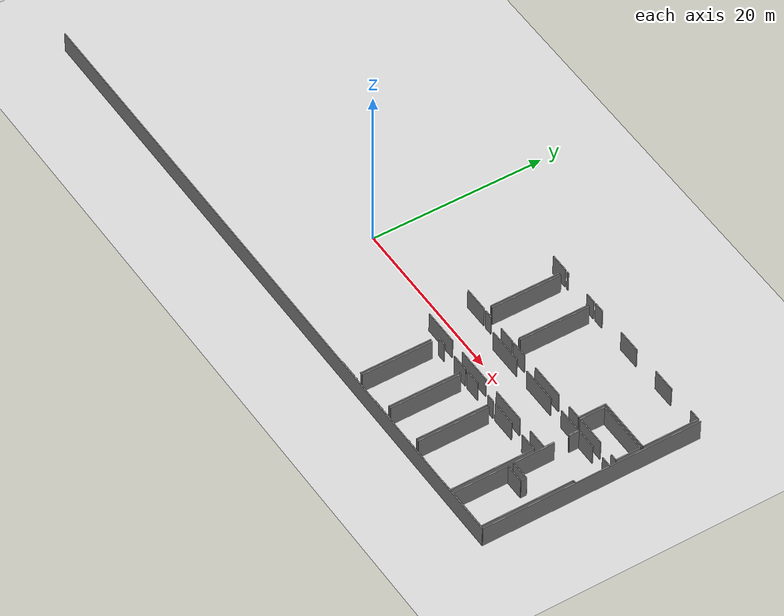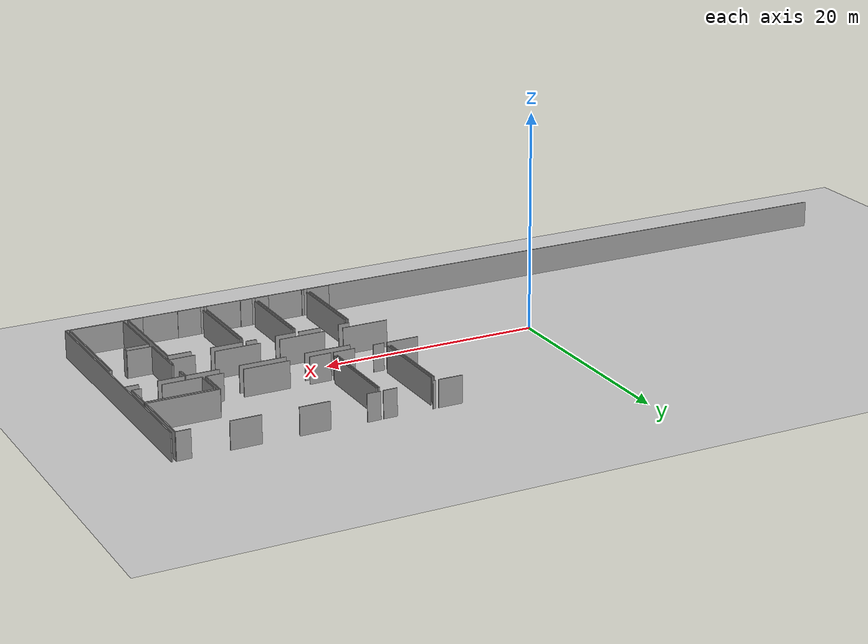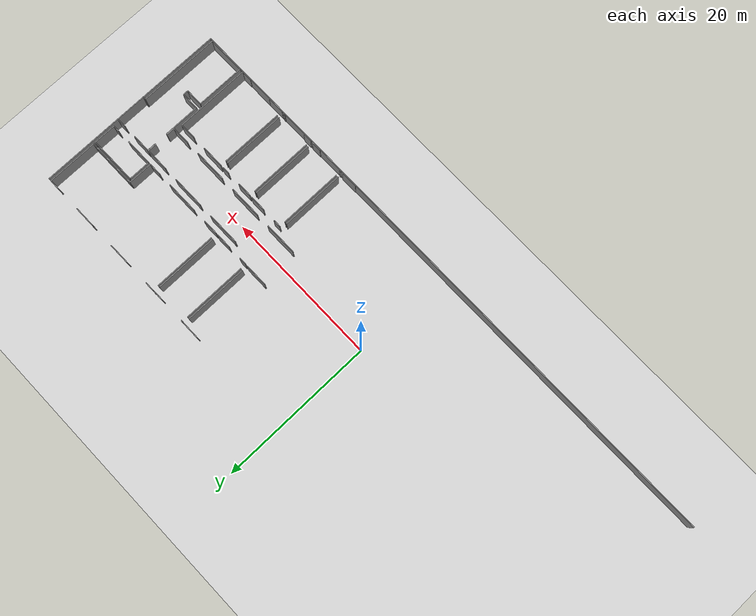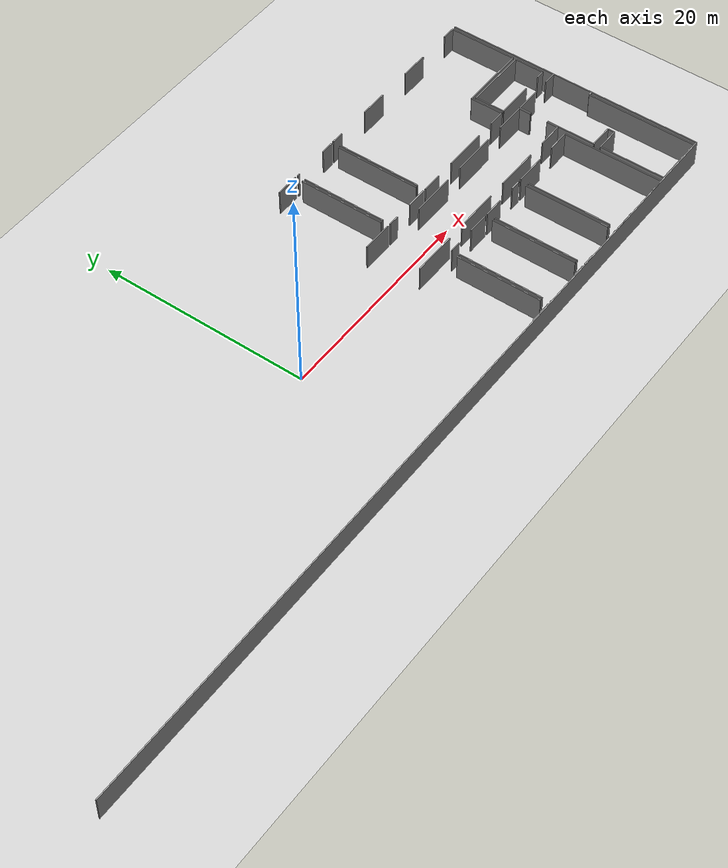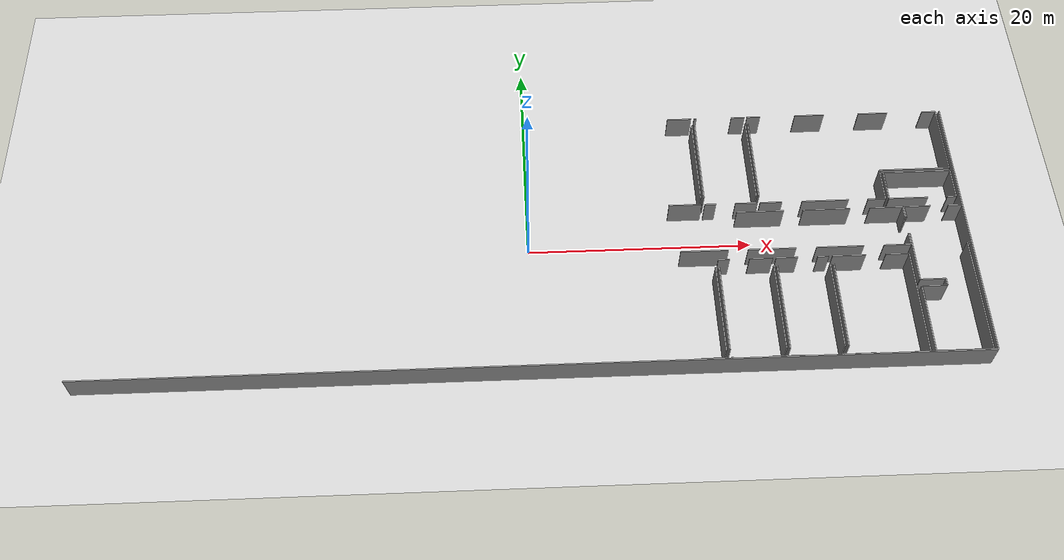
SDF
<sdf version="1.6">
 <world name="default">
  <model name="ground_plane">
   <static>1</static>
   <link name="link">
    <collision name="collision">
     <geometry><plane><normal>0 0 1</normal><size>100 100</size></plane></geometry>
     <surface><friction><ode><mu>100</mu><mu2>50</mu2></ode></friction></surface>
    </collision>
    <visual name="visual">
     <cast_shadows>0</cast_shadows>
     <geometry><plane><normal>0 0 1</normal><size>100 100</size></plane></geometry>
     <material>
      <script><uri>file://media/materials/scripts/gazebo.material</uri><name>Gazebo/Grey</name></script>
     </material>
    </visual>
   </link>
  </model>
  <model name="50052752">
   <static>1</static>
   <link name="Wall_29">
    <collision name="Wall_29_Collision">
     <geometry><box><size>4.22208687046 0.1 2.5</size></box></geometry>
     <pose>2.11104343523 0 1.25 0 0 0</pose>
    </collision>
    <visual name="Wall_29_Visual">
     <pose>2.11104343523 0 1.25 0 0 0</pose>
     <geometry><box><size>4.22208687046 0.1 2.5</size></box></geometry>
     <material>
      <script><uri>file://media/materials/scripts/gazebo.material</uri><name>Gazebo/Grey</name></script>
      <ambient>1 1 1 1</ambient>
     </material>
    </visual>
    <pose>57.7867448323 -10.5651782202 0 0 0 0.0</pose>
   </link>
   <link name="Wall_30">
    <collision name="Wall_30_Collision">
     <geometry><box><size>4.24809978809 0.1 2.5</size></box></geometry>
     <pose>2.12404989404 0 1.25 0 0 0</pose>
    </collision>
    <visual name="Wall_30_Visual">
     <pose>2.12404989404 0 1.25 0 0 0</pose>
     <geometry><box><size>4.24809978809 0.1 2.5</size></box></geometry>
     <material>
      <script><uri>file://media/materials/scripts/gazebo.material</uri><name>Gazebo/Grey</name></script>
      <ambient>1 1 1 1</ambient>
     </material>
    </visual>
    <pose>63.7473828467 -10.5651782202 0 0 0 0.0</pose>
   </link>
   <link name="Wall_31">
    <collision name="Wall_31_Collision">
     <geometry><box><size>2.96927937874 0.1 2.5</size></box></geometry>
     <pose>1.48463968937 0 1.25 0 0 0</pose>
    </collision>
    <visual name="Wall_31_Visual">
     <pose>1.48463968937 0 1.25 0 0 0</pose>
     <geometry><box><size>2.96927937874 0.1 2.5</size></box></geometry>
     <material>
      <script><uri>file://media/materials/scripts/gazebo.material</uri><name>Gazebo/Grey</name></script>
      <ambient>1 1 1 1</ambient>
     </material>
    </visual>
    <pose>69.7780654003 -10.5651782202 0 0 0 0.0</pose>
   </link>
   <link name="Wall_32">
    <collision name="Wall_32_Collision">
     <geometry><box><size>1.13238671692 0.1 2.5</size></box></geometry>
     <pose>0.566193358458 0 1.25 0 0 0</pose>
    </collision>
    <visual name="Wall_32_Visual">
     <pose>0.566193358458 0 1.25 0 0 0</pose>
     <geometry><box><size>1.13238671692 0.1 2.5</size></box></geometry>
     <material>
      <script><uri>file://media/materials/scripts/gazebo.material</uri><name>Gazebo/Grey</name></script>
      <ambient>1 1 1 1</ambient>
     </material>
    </visual>
    <pose>72.747344779 -10.5651782202 0 0 0 -1.57079632679</pose>
   </link>
   <link name="Wall_33">
    <collision name="Wall_33_Collision">
     <geometry><box><size>1.12553453373 0.1 2.5</size></box></geometry>
     <pose>0.562767266867 0 1.25 0 0 0</pose>
    </collision>
    <visual name="Wall_33_Visual">
     <pose>0.562767266867 0 1.25 0 0 0</pose>
     <geometry><box><size>1.12553453373 0.1 2.5</size></box></geometry>
     <material>
      <script><uri>file://media/materials/scripts/gazebo.material</uri><name>Gazebo/Grey</name></script>
      <ambient>1 1 1 1</ambient>
     </material>
    </visual>
    <pose>72.747344779 -13.3953836588 0 0 0 -1.57079632679</pose>
   </link>
   <link name="Wall_34">
    <collision name="Wall_34_Collision">
     <geometry><box><size>2.4015633129 0.1 2.5</size></box></geometry>
     <pose>1.20078165645 0 1.25 0 0 0</pose>
    </collision>
    <visual name="Wall_34_Visual">
     <pose>1.20078165645 0 1.25 0 0 0</pose>
     <geometry><box><size>2.4015633129 0.1 2.5</size></box></geometry>
     <material>
      <script><uri>file://media/materials/scripts/gazebo.material</uri><name>Gazebo/Grey</name></script>
      <ambient>1 1 1 1</ambient>
     </material>
    </visual>
    <pose>72.747344779 -14.5209181925 0 0 0 3.14159265359</pose>
   </link>
   <link name="Wall_35">
    <collision name="Wall_35_Collision">
     <geometry><box><size>4.18807973911 0.1 2.5</size></box></geometry>
     <pose>2.09403986955 0 1.25 0 0 0</pose>
    </collision>
    <visual name="Wall_35_Visual">
     <pose>2.09403986955 0 1.25 0 0 0</pose>
     <geometry><box><size>4.18807973911 0.1 2.5</size></box></geometry>
     <material>
      <script><uri>file://media/materials/scripts/gazebo.material</uri><name>Gazebo/Grey</name></script>
      <ambient>1 1 1 1</ambient>
     </material>
    </visual>
    <pose>68.5630718083 -14.5209181925 0 0 0 3.14159265359</pose>
   </link>
   <link name="Wall_36">
    <collision name="Wall_36_Collision">
     <geometry><box><size>4.23135000698 0.1 2.5</size></box></geometry>
     <pose>2.11567500349 0 1.25 0 0 0</pose>
    </collision>
    <visual name="Wall_36_Visual">
     <pose>2.11567500349 0 1.25 0 0 0</pose>
     <geometry><box><size>4.23135000698 0.1 2.5</size></box></geometry>
     <material>
      <script><uri>file://media/materials/scripts/gazebo.material</uri><name>Gazebo/Grey</name></script>
      <ambient>1 1 1 1</ambient>
     </material>
    </visual>
    <pose>62.5652543556 -14.5209181925 0 0 0 3.14159265359</pose>
   </link>
   <link name="Wall_37">
    <collision name="Wall_37_Collision">
     <geometry><box><size>4.22551296205 0.1 2.5</size></box></geometry>
     <pose>2.11275648102 0 1.25 0 0 0</pose>
    </collision>
    <visual name="Wall_37_Visual">
     <pose>2.11275648102 0 1.25 0 0 0</pose>
     <geometry><box><size>4.22551296205 0.1 2.5</size></box></geometry>
     <material>
      <script><uri>file://media/materials/scripts/gazebo.material</uri><name>Gazebo/Grey</name></script>
      <ambient>1 1 1 1</ambient>
     </material>
    </visual>
    <pose>56.5939573896 -14.5209181925 0 0 0 3.14159265359</pose>
   </link>
   <link name="Wall_77">
    <collision name="Wall_77_Collision">
     <geometry><box><size>2.22074181228 0.1 2.5</size></box></geometry>
     <pose>1.11037090614 0 1.25 0 0 0</pose>
    </collision>
    <visual name="Wall_77_Visual">
     <pose>1.11037090614 0 1.25 0 0 0</pose>
     <geometry><box><size>2.22074181228 0.1 2.5</size></box></geometry>
     <material>
      <script><uri>file://media/materials/scripts/gazebo.material</uri><name>Gazebo/Grey</name></script>
      <ambient>1 1 1 1</ambient>
     </material>
    </visual>
    <pose>52.5160201505 -0.0236019642925 0 0 0 0.0</pose>
   </link>
   <link name="Wall_78">
    <collision name="Wall_78_Collision">
     <geometry><box><size>8.13049602193 0.1 2.5</size></box></geometry>
     <pose>4.06524801096 0 1.25 0 0 0</pose>
    </collision>
    <visual name="Wall_78_Visual">
     <pose>4.06524801096 0 1.25 0 0 0</pose>
     <geometry><box><size>8.13049602193 0.1 2.5</size></box></geometry>
     <material>
      <script><uri>file://media/materials/scripts/gazebo.material</uri><name>Gazebo/Grey</name></script>
      <ambient>1 1 1 1</ambient>
     </material>
    </visual>
    <pose>54.7367619628 -0.765414239852 0 0 0 -1.57079632679</pose>
   </link>
   <link name="Wall_79">
    <collision name="Wall_79_Collision">
     <geometry><box><size>2.94187064601 0.1 2.5</size></box></geometry>
     <pose>1.470935323 0 1.25 0 0 0</pose>
    </collision>
    <visual name="Wall_79_Visual">
     <pose>1.470935323 0 1.25 0 0 0</pose>
     <geometry><box><size>2.94187064601 0.1 2.5</size></box></geometry>
     <material>
      <script><uri>file://media/materials/scripts/gazebo.material</uri><name>Gazebo/Grey</name></script>
      <ambient>1 1 1 1</ambient>
     </material>
    </visual>
    <pose>54.7367619628 -9.6251602015 0 0 0 3.14159265359</pose>
   </link>
   <link name="Wall_81">
    <collision name="Wall_81_Collision">
     <geometry><box><size>8.12009085487 0.1 2.5</size></box></geometry>
     <pose>4.06004542744 0 1.25 0 0 0</pose>
    </collision>
    <visual name="Wall_81_Visual">
     <pose>4.06004542744 0 1.25 0 0 0</pose>
     <geometry><box><size>8.12009085487 0.1 2.5</size></box></geometry>
     <material>
      <script><uri>file://media/materials/scripts/gazebo.material</uri><name>Gazebo/Grey</name></script>
      <ambient>1 1 1 1</ambient>
     </material>
    </visual>
    <pose>55.0141484893 -8.90542718286 0 0 0 1.57079632679</pose>
   </link>
   <link name="Wall_82">
    <collision name="Wall_82_Collision">
     <geometry><box><size>0.234243150989 0.1 2.5</size></box></geometry>
     <pose>0.117121575495 0 1.25 0 0 0</pose>
    </collision>
    <visual name="Wall_82_Visual">
     <pose>0.117121575495 0 1.25 0 0 0</pose>
     <geometry><box><size>0.234243150989 0.1 2.5</size></box></geometry>
     <material>
      <script><uri>file://media/materials/scripts/gazebo.material</uri><name>Gazebo/Grey</name></script>
      <ambient>1 1 1 1</ambient>
     </material>
    </visual>
    <pose>55.0141484893 -0.0380676843428 0 0 0 0.0</pose>
   </link>
   <link name="Wall_83">
    <collision name="Wall_83_Collision">
     <geometry><box><size>1.24785869276 0.1 2.5</size></box></geometry>
     <pose>0.623929346378 0 1.25 0 0 0</pose>
    </collision>
    <visual name="Wall_83_Visual">
     <pose>0.623929346378 0 1.25 0 0 0</pose>
     <geometry><box><size>1.24785869276 0.1 2.5</size></box></geometry>
     <material>
      <script><uri>file://media/materials/scripts/gazebo.material</uri><name>Gazebo/Grey</name></script>
      <ambient>1 1 1 1</ambient>
     </material>
    </visual>
    <pose>58.5132031419 -0.0380676843428 0 0 0 0.0</pose>
   </link>
   <link name="Wall_84">
    <collision name="Wall_84_Collision">
     <geometry><box><size>8.11120839519 0.1 2.5</size></box></geometry>
     <pose>4.0556041976 0 1.25 0 0 0</pose>
    </collision>
    <visual name="Wall_84_Visual">
     <pose>4.0556041976 0 1.25 0 0 0</pose>
     <geometry><box><size>8.11120839519 0.1 2.5</size></box></geometry>
     <material>
      <script><uri>file://media/materials/scripts/gazebo.material</uri><name>Gazebo/Grey</name></script>
      <ambient>1 1 1 1</ambient>
     </material>
    </visual>
    <pose>59.7610618346 -0.778103467966 0 0 0 -1.57079632679</pose>
   </link>
   <link name="Wall_85">
    <collision name="Wall_85_Collision">
     <geometry><box><size>1.9897978606 0.1 2.5</size></box></geometry>
     <pose>0.994898930298 0 1.25 0 0 0</pose>
    </collision>
    <visual name="Wall_85_Visual">
     <pose>0.994898930298 0 1.25 0 0 0</pose>
     <geometry><box><size>1.9897978606 0.1 2.5</size></box></geometry>
     <material>
      <script><uri>file://media/materials/scripts/gazebo.material</uri><name>Gazebo/Grey</name></script>
      <ambient>1 1 1 1</ambient>
     </material>
    </visual>
    <pose>59.7610618346 -9.63658050681 0 0 0 3.14159265359</pose>
   </link>
   <link name="Wall_86">
    <collision name="Wall_86_Collision">
     <geometry><box><size>1.00930299895 0.1 2.5</size></box></geometry>
     <pose>0.504651499474 0 1.25 0 0 0</pose>
    </collision>
    <visual name="Wall_86_Visual">
     <pose>0.504651499474 0 1.25 0 0 0</pose>
     <geometry><box><size>1.00930299895 0.1 2.5</size></box></geometry>
     <material>
      <script><uri>file://media/materials/scripts/gazebo.material</uri><name>Gazebo/Grey</name></script>
      <ambient>1 1 1 1</ambient>
     </material>
    </visual>
    <pose>56.0234496936 -9.63658050681 0 0 0 3.13970681222</pose>
   </link>
   <link name="Wall_87">
    <collision name="Wall_87_Collision">
     <geometry><box><size>8.10613270395 0.1 2.5</size></box></geometry>
     <pose>4.05306635197 0 1.25 0 0 0</pose>
    </collision>
    <visual name="Wall_87_Visual">
     <pose>4.05306635197 0 1.25 0 0 0</pose>
     <geometry><box><size>8.10613270395 0.1 2.5</size></box></geometry>
     <material>
      <script><uri>file://media/materials/scripts/gazebo.material</uri><name>Gazebo/Grey</name></script>
      <ambient>1 1 1 1</ambient>
     </material>
    </visual>
    <pose>60.0001268923 -8.88423617191 0 0 0 1.57079632679</pose>
   </link>
   <link name="Wall_88">
    <collision name="Wall_88_Collision">
     <geometry><box><size>1.22831728146 0.1 2.5</size></box></geometry>
     <pose>0.61415864073 0 1.25 0 0 0</pose>
    </collision>
    <visual name="Wall_88_Visual">
     <pose>0.61415864073 0 1.25 0 0 0</pose>
     <geometry><box><size>1.22831728146 0.1 2.5</size></box></geometry>
     <material>
      <script><uri>file://media/materials/scripts/gazebo.material</uri><name>Gazebo/Grey</name></script>
      <ambient>1 1 1 1</ambient>
     </material>
    </visual>
    <pose>60.0001268923 -0.0210641186697 0 0 0 0.0</pose>
   </link>
   <link name="Wall_89">
    <collision name="Wall_89_Collision">
     <geometry><box><size>2.73173702844 0.1 2.5</size></box></geometry>
     <pose>1.36586851422 0 1.25 0 0 0</pose>
    </collision>
    <visual name="Wall_89_Visual">
     <pose>1.36586851422 0 1.25 0 0 0</pose>
     <geometry><box><size>2.73173702844 0.1 2.5</size></box></geometry>
     <material>
      <script><uri>file://media/materials/scripts/gazebo.material</uri><name>Gazebo/Grey</name></script>
      <ambient>1 1 1 1</ambient>
     </material>
    </visual>
    <pose>64.4964279823 -0.0210641186697 0 0 0 0.0</pose>
   </link>
   <link name="Wall_90">
    <collision name="Wall_90_Collision">
     <geometry><box><size>2.72539241438 0.1 2.5</size></box></geometry>
     <pose>1.36269620719 0 1.25 0 0 0</pose>
    </collision>
    <visual name="Wall_90_Visual">
     <pose>1.36269620719 0 1.25 0 0 0</pose>
     <geometry><box><size>2.72539241438 0.1 2.5</size></box></geometry>
     <material>
      <script><uri>file://media/materials/scripts/gazebo.material</uri><name>Gazebo/Grey</name></script>
      <ambient>1 1 1 1</ambient>
     </material>
    </visual>
    <pose>70.4961488193 -0.0210641186697 0 0 0 0.0</pose>
   </link>
   <link name="Wall_91">
    <collision name="Wall_91_Collision">
     <geometry><box><size>1.28694151535 0.1 2.5</size></box></geometry>
     <pose>0.643470757674 0 1.25 0 0 0</pose>
    </collision>
    <visual name="Wall_91_Visual">
     <pose>0.643470757674 0 1.25 0 0 0</pose>
     <geometry><box><size>1.28694151535 0.1 2.5</size></box></geometry>
     <material>
      <script><uri>file://media/materials/scripts/gazebo.material</uri><name>Gazebo/Grey</name></script>
      <ambient>1 1 1 1</ambient>
     </material>
    </visual>
    <pose>76.495742764 -0.0210641186697 0 0 0 0.0</pose>
   </link>
   <link name="Wall_92">
    <collision name="Wall_92_Collision">
     <geometry><box><size>6.47696270636 0.1 2.5</size></box></geometry>
     <pose>3.23848135318 0 1.25 0 0 0</pose>
    </collision>
    <visual name="Wall_92_Visual">
     <pose>3.23848135318 0 1.25 0 0 0</pose>
     <geometry><box><size>6.47696270636 0.1 2.5</size></box></geometry>
     <material>
      <script><uri>file://media/materials/scripts/gazebo.material</uri><name>Gazebo/Grey</name></script>
      <ambient>1 1 1 1</ambient>
     </material>
    </visual>
    <pose>77.7826842793 -0.0210641186697 0 0 0 -1.57079632679</pose>
   </link>
   <link name="Wall_93">
    <collision name="Wall_93_Collision">
     <geometry><box><size>6.4188460416 0.1 2.5</size></box></geometry>
     <pose>3.2094230208 0 1.25 0 0 0</pose>
    </collision>
    <visual name="Wall_93_Visual">
     <pose>3.2094230208 0 1.25 0 0 0</pose>
     <geometry><box><size>6.4188460416 0.1 2.5</size></box></geometry>
     <material>
      <script><uri>file://media/materials/scripts/gazebo.material</uri><name>Gazebo/Grey</name></script>
      <ambient>1 1 1 1</ambient>
     </material>
    </visual>
    <pose>77.7826842793 -6.49802682503 0 0 0 3.14159265359</pose>
   </link>
   <link name="Wall_94">
    <collision name="Wall_94_Collision">
     <geometry><box><size>3.13703097441 0.1 2.5</size></box></geometry>
     <pose>1.5685154872 0 1.25 0 0 0</pose>
    </collision>
    <visual name="Wall_94_Visual">
     <pose>1.5685154872 0 1.25 0 0 0</pose>
     <geometry><box><size>3.13703097441 0.1 2.5</size></box></geometry>
     <material>
      <script><uri>file://media/materials/scripts/gazebo.material</uri><name>Gazebo/Grey</name></script>
      <ambient>1 1 1 1</ambient>
     </material>
    </visual>
    <pose>71.3638382377 -6.49802682503 0 0 0 -1.57079632679</pose>
   </link>
   <link name="Wall_95">
    <collision name="Wall_95_Collision">
     <geometry><box><size>1.59960409608 0.1 2.5</size></box></geometry>
     <pose>0.799802048041 0 1.25 0 0 0</pose>
    </collision>
    <visual name="Wall_95_Visual">
     <pose>0.799802048041 0 1.25 0 0 0</pose>
     <geometry><box><size>1.59960409608 0.1 2.5</size></box></geometry>
     <material>
      <script><uri>file://media/materials/scripts/gazebo.material</uri><name>Gazebo/Grey</name></script>
      <ambient>1 1 1 1</ambient>
     </material>
    </visual>
    <pose>71.3638382377 -9.63505779943 0 0 0 3.14159265359</pose>
   </link>
   <link name="Wall_96">
    <collision name="Wall_96_Collision">
     <geometry><box><size>4.20203789004 0.1 2.5</size></box></geometry>
     <pose>2.10101894502 0 1.25 0 0 0</pose>
    </collision>
    <visual name="Wall_96_Visual">
     <pose>2.10101894502 0 1.25 0 0 0</pose>
     <geometry><box><size>4.20203789004 0.1 2.5</size></box></geometry>
     <material>
      <script><uri>file://media/materials/scripts/gazebo.material</uri><name>Gazebo/Grey</name></script>
      <ambient>1 1 1 1</ambient>
     </material>
    </visual>
    <pose>67.9954826348 -9.63505779943 0 0 0 3.14159265359</pose>
   </link>
   <link name="Wall_97">
    <collision name="Wall_97_Collision">
     <geometry><box><size>1.98829279124 0.1 2.5</size></box></geometry>
     <pose>0.994146395622 0 1.25 0 0 0</pose>
    </collision>
    <visual name="Wall_97_Visual">
     <pose>0.994146395622 0 1.25 0 0 0</pose>
     <geometry><box><size>1.98829279124 0.1 2.5</size></box></geometry>
     <material>
      <script><uri>file://media/materials/scripts/gazebo.material</uri><name>Gazebo/Grey</name></script>
      <ambient>1 1 1 1</ambient>
     </material>
    </visual>
    <pose>61.9884020455 -9.63505779943 0 0 0 -3.13738053988</pose>
   </link>
   <link name="Wall_98">
    <collision name="Wall_98_Collision">
     <geometry><box><size>2.84403669725 0.1 2.5</size></box></geometry>
     <pose>1.42201834862 0 1.25 0 0 0</pose>
    </collision>
    <visual name="Wall_98_Visual">
     <pose>1.42201834862 0 1.25 0 0 0</pose>
     <geometry><box><size>2.84403669725 0.1 2.5</size></box></geometry>
     <material>
      <script><uri>file://media/materials/scripts/gazebo.material</uri><name>Gazebo/Grey</name></script>
      <ambient>1 1 1 1</ambient>
     </material>
    </visual>
    <pose>71.6667301128 -9.62934764678 0 0 0 1.57079632679</pose>
   </link>
   <link name="Wall_99">
    <collision name="Wall_99_Collision">
     <geometry><box><size>6.12331391881 0.1 2.5</size></box></geometry>
     <pose>3.06165695941 0 1.25 0 0 0</pose>
    </collision>
    <visual name="Wall_99_Visual">
     <pose>3.06165695941 0 1.25 0 0 0</pose>
     <geometry><box><size>6.12331391881 0.1 2.5</size></box></geometry>
     <material>
      <script><uri>file://media/materials/scripts/gazebo.material</uri><name>Gazebo/Grey</name></script>
      <ambient>1 1 1 1</ambient>
     </material>
    </visual>
    <pose>71.6667301128 -6.78531094953 0 0 0 0.0</pose>
   </link>
   <link name="Wall_100">
    <collision name="Wall_100_Collision">
     <geometry><box><size>2.84403669725 0.1 2.5</size></box></geometry>
     <pose>1.42201834862 0 1.25 0 0 0</pose>
    </collision>
    <visual name="Wall_100_Visual">
     <pose>1.42201834862 0 1.25 0 0 0</pose>
     <geometry><box><size>2.84403669725 0.1 2.5</size></box></geometry>
     <material>
      <script><uri>file://media/materials/scripts/gazebo.material</uri><name>Gazebo/Grey</name></script>
      <ambient>1 1 1 1</ambient>
     </material>
    </visual>
    <pose>77.7900440316 -6.78531094953 0 0 0 -1.57079632679</pose>
   </link>
   <link name="Wall_101">
    <collision name="Wall_101_Collision">
     <geometry><box><size>0.819851028462 0.1 2.5</size></box></geometry>
     <pose>0.409925514231 0 1.25 0 0 0</pose>
    </collision>
    <visual name="Wall_101_Visual">
     <pose>0.409925514231 0 1.25 0 0 0</pose>
     <geometry><box><size>0.819851028462 0.1 2.5</size></box></geometry>
     <material>
      <script><uri>file://media/materials/scripts/gazebo.material</uri><name>Gazebo/Grey</name></script>
      <ambient>1 1 1 1</ambient>
     </material>
    </visual>
    <pose>77.7900440316 -9.62934764678 0 0 0 3.14159265359</pose>
   </link>
   <link name="Wall_102">
    <collision name="Wall_102_Collision">
     <geometry><box><size>3.53496516807 0.1 2.5</size></box></geometry>
     <pose>1.76748258403 0 1.25 0 0 0</pose>
    </collision>
    <visual name="Wall_102_Visual">
     <pose>1.76748258403 0 1.25 0 0 0</pose>
     <geometry><box><size>3.53496516807 0.1 2.5</size></box></geometry>
     <material>
      <script><uri>file://media/materials/scripts/gazebo.material</uri><name>Gazebo/Grey</name></script>
      <ambient>1 1 1 1</ambient>
     </material>
    </visual>
    <pose>75.2016952809 -9.62934764678 0 0 0 3.14159265359</pose>
   </link>
   <link name="Wall_103">
    <collision name="Wall_103_Collision">
     <geometry><box><size>4.88877891558 0.1 2.5</size></box></geometry>
     <pose>2.44438945779 0 1.25 0 0 0</pose>
    </collision>
    <visual name="Wall_103_Visual">
     <pose>2.44438945779 0 1.25 0 0 0</pose>
     <geometry><box><size>4.88877891558 0.1 2.5</size></box></geometry>
     <material>
      <script><uri>file://media/materials/scripts/gazebo.material</uri><name>Gazebo/Grey</name></script>
      <ambient>1 1 1 1</ambient>
     </material>
    </visual>
    <pose>77.7724060045 -25.0566574035 0 0 0 3.14159265359</pose>
   </link>
   <link name="Wall_104">
    <collision name="Wall_104_Collision">
     <geometry><box><size>6.28763942289 0.1 2.5</size></box></geometry>
     <pose>3.14381971145 0 1.25 0 0 0</pose>
    </collision>
    <visual name="Wall_104_Visual">
     <pose>3.14381971145 0 1.25 0 0 0</pose>
     <geometry><box><size>6.28763942289 0.1 2.5</size></box></geometry>
     <material>
      <script><uri>file://media/materials/scripts/gazebo.material</uri><name>Gazebo/Grey</name></script>
      <ambient>1 1 1 1</ambient>
     </material>
    </visual>
    <pose>72.883627089 -25.0566574035 0 0 0 1.57079632679</pose>
   </link>
   <link name="Wall_105">
    <collision name="Wall_105_Collision">
     <geometry><box><size>2.22886291827 0.1 2.5</size></box></geometry>
     <pose>1.11443145913 0 1.25 0 0 0</pose>
    </collision>
    <visual name="Wall_105_Visual">
     <pose>1.11443145913 0 1.25 0 0 0</pose>
     <geometry><box><size>2.22886291827 0.1 2.5</size></box></geometry>
     <material>
      <script><uri>file://media/materials/scripts/gazebo.material</uri><name>Gazebo/Grey</name></script>
      <ambient>1 1 1 1</ambient>
     </material>
    </visual>
    <pose>72.883627089 -18.7690179806 0 0 0 0.0</pose>
   </link>
   <link name="Wall_106">
    <collision name="Wall_106_Collision">
     <geometry><box><size>0.661997030721 0.1 2.5</size></box></geometry>
     <pose>0.33099851536 0 1.25 0 0 0</pose>
    </collision>
    <visual name="Wall_106_Visual">
     <pose>0.33099851536 0 1.25 0 0 0</pose>
     <geometry><box><size>0.661997030721 0.1 2.5</size></box></geometry>
     <material>
      <script><uri>file://media/materials/scripts/gazebo.material</uri><name>Gazebo/Grey</name></script>
      <ambient>1 1 1 1</ambient>
     </material>
    </visual>
    <pose>75.1124900072 -18.7690179806 0 0 0 1.57079632679</pose>
   </link>
   <link name="Wall_107">
    <collision name="Wall_107_Collision">
     <geometry><box><size>2.26198180365 0.1 2.5</size></box></geometry>
     <pose>1.13099090182 0 1.25 0 0 0</pose>
    </collision>
    <visual name="Wall_107_Visual">
     <pose>1.13099090182 0 1.25 0 0 0</pose>
     <geometry><box><size>2.26198180365 0.1 2.5</size></box></geometry>
     <material>
      <script><uri>file://media/materials/scripts/gazebo.material</uri><name>Gazebo/Grey</name></script>
      <ambient>1 1 1 1</ambient>
     </material>
    </visual>
    <pose>75.1124900072 -18.1070209499 0 0 0 3.14159265359</pose>
   </link>
   <link name="Wall_108">
    <collision name="Wall_108_Collision">
     <geometry><box><size>4.69234966437 0.1 2.5</size></box></geometry>
     <pose>2.34617483218 0 1.25 0 0 0</pose>
    </collision>
    <visual name="Wall_108_Visual">
     <pose>2.34617483218 0 1.25 0 0 0</pose>
     <geometry><box><size>4.69234966437 0.1 2.5</size></box></geometry>
     <material>
      <script><uri>file://media/materials/scripts/gazebo.material</uri><name>Gazebo/Grey</name></script>
      <ambient>1 1 1 1</ambient>
     </material>
    </visual>
    <pose>72.8505082036 -18.1070209499 0 0 0 1.57079632679</pose>
   </link>
   <link name="Wall_109">
    <collision name="Wall_109_Collision">
     <geometry><box><size>1.16740898651 0.1 2.5</size></box></geometry>
     <pose>0.583704493256 0 1.25 0 0 0</pose>
    </collision>
    <visual name="Wall_109_Visual">
     <pose>0.583704493256 0 1.25 0 0 0</pose>
     <geometry><box><size>1.16740898651 0.1 2.5</size></box></geometry>
     <material>
      <script><uri>file://media/materials/scripts/gazebo.material</uri><name>Gazebo/Grey</name></script>
      <ambient>1 1 1 1</ambient>
     </material>
    </visual>
    <pose>72.8505082036 -11.7121575495 0 0 0 1.57079632679</pose>
   </link>
   <link name="Wall_110">
    <collision name="Wall_110_Collision">
     <geometry><box><size>2.37123605771 0.1 2.5</size></box></geometry>
     <pose>1.18561802886 0 1.25 0 0 0</pose>
    </collision>
    <visual name="Wall_110_Visual">
     <pose>1.18561802886 0 1.25 0 0 0</pose>
     <geometry><box><size>2.37123605771 0.1 2.5</size></box></geometry>
     <material>
      <script><uri>file://media/materials/scripts/gazebo.material</uri><name>Gazebo/Grey</name></script>
      <ambient>1 1 1 1</ambient>
     </material>
    </visual>
    <pose>72.8505082036 -10.5447485629 0 0 0 0.0</pose>
   </link>
   <link name="Wall_111">
    <collision name="Wall_111_Collision">
     <geometry><box><size>1.26892281143 0.1 2.5</size></box></geometry>
     <pose>0.634461405713 0 1.25 0 0 0</pose>
    </collision>
    <visual name="Wall_111_Visual">
     <pose>0.634461405713 0 1.25 0 0 0</pose>
     <geometry><box><size>1.26892281143 0.1 2.5</size></box></geometry>
     <material>
      <script><uri>file://media/materials/scripts/gazebo.material</uri><name>Gazebo/Grey</name></script>
      <ambient>1 1 1 1</ambient>
     </material>
    </visual>
    <pose>76.8669026863 -10.5447485629 0 0 0 0.0</pose>
   </link>
   <link name="Wall_112">
    <collision name="Wall_112_Collision">
     <geometry><box><size>0.372682629716 0.1 2.5</size></box></geometry>
     <pose>0.186341314858 0 1.25 0 0 0</pose>
    </collision>
    <visual name="Wall_112_Visual">
     <pose>0.186341314858 0 1.25 0 0 0</pose>
     <geometry><box><size>0.372682629716 0.1 2.5</size></box></geometry>
     <material>
      <script><uri>file://media/materials/scripts/gazebo.material</uri><name>Gazebo/Grey</name></script>
      <ambient>1 1 1 1</ambient>
     </material>
    </visual>
    <pose>78.1358254977 -14.4993465048 0 0 0 3.14159265359</pose>
   </link>
   <link name="Wall_113">
    <collision name="Wall_113_Collision">
     <geometry><box><size>10.5573149626 0.1 2.5</size></box></geometry>
     <pose>5.27865748129 0 1.25 0 0 0</pose>
    </collision>
    <visual name="Wall_113_Visual">
     <pose>5.27865748129 0 1.25 0 0 0</pose>
     <geometry><box><size>10.5573149626 0.1 2.5</size></box></geometry>
     <material>
      <script><uri>file://media/materials/scripts/gazebo.material</uri><name>Gazebo/Grey</name></script>
      <ambient>1 1 1 1</ambient>
     </material>
    </visual>
    <pose>77.763142868 -14.4993465048 0 0 0 -1.56991891263</pose>
   </link>
   <link name="Wall_114">
    <collision name="Wall_114_Collision">
     <geometry><box><size>8.09851916708 0.1 2.5</size></box></geometry>
     <pose>4.04925958354 0 1.25 0 0 0</pose>
    </collision>
    <visual name="Wall_114_Visual">
     <pose>4.04925958354 0 1.25 0 0 0</pose>
     <geometry><box><size>8.09851916708 0.1 2.5</size></box></geometry>
     <material>
      <script><uri>file://media/materials/scripts/gazebo.material</uri><name>Gazebo/Grey</name></script>
      <ambient>1 1 1 1</ambient>
     </material>
    </visual>
    <pose>65.6299567297 -24.3227124494 0 0 0 1.57079632679</pose>
   </link>
   <link name="Wall_115">
    <collision name="Wall_115_Collision">
     <geometry><box><size>2.93159237124 0.1 2.5</size></box></geometry>
     <pose>1.46579618562 0 1.25 0 0 0</pose>
    </collision>
    <visual name="Wall_115_Visual">
     <pose>1.46579618562 0 1.25 0 0 0</pose>
     <geometry><box><size>2.93159237124 0.1 2.5</size></box></geometry>
     <material>
      <script><uri>file://media/materials/scripts/gazebo.material</uri><name>Gazebo/Grey</name></script>
      <ambient>1 1 1 1</ambient>
     </material>
    </visual>
    <pose>65.6299567297 -15.4624589186 0 0 0 0.0</pose>
   </link>
   <link name="Wall_116">
    <collision name="Wall_116_Collision">
     <geometry><box><size>2.08547464058 0.1 2.5</size></box></geometry>
     <pose>1.04273732029 0 1.25 0 0 0</pose>
    </collision>
    <visual name="Wall_116_Visual">
     <pose>1.04273732029 0 1.25 0 0 0</pose>
     <geometry><box><size>2.08547464058 0.1 2.5</size></box></geometry>
     <material>
      <script><uri>file://media/materials/scripts/gazebo.material</uri><name>Gazebo/Grey</name></script>
      <ambient>1 1 1 1</ambient>
     </material>
    </visual>
    <pose>70.3347418377 -15.4624589186 0 0 0 0.0</pose>
   </link>
   <link name="Wall_117">
    <collision name="Wall_117_Collision">
     <geometry><box><size>9.61805423376 0.1 2.5</size></box></geometry>
     <pose>4.80902711688 0 1.25 0 0 0</pose>
    </collision>
    <visual name="Wall_117_Visual">
     <pose>4.80902711688 0 1.25 0 0 0</pose>
     <geometry><box><size>9.61805423376 0.1 2.5</size></box></geometry>
     <material>
      <script><uri>file://media/materials/scripts/gazebo.material</uri><name>Gazebo/Grey</name></script>
      <ambient>1 1 1 1</ambient>
     </material>
    </visual>
    <pose>72.4202164782 -15.4624589186 0 0 0 -1.57079632679</pose>
   </link>
   <link name="Wall_118">
    <collision name="Wall_118_Collision">
     <geometry><box><size>1.34620021064 0.1 2.5</size></box></geometry>
     <pose>0.673100105321 0 1.25 0 0 0</pose>
    </collision>
    <visual name="Wall_118_Visual">
     <pose>0.673100105321 0 1.25 0 0 0</pose>
     <geometry><box><size>1.34620021064 0.1 2.5</size></box></geometry>
     <material>
      <script><uri>file://media/materials/scripts/gazebo.material</uri><name>Gazebo/Grey</name></script>
      <ambient>1 1 1 1</ambient>
     </material>
    </visual>
    <pose>72.4202164782 -25.0805131524 0 0 0 3.14159265359</pose>
   </link>
   <link name="Wall_119">
    <collision name="Wall_119_Collision">
     <geometry><box><size>2.17955770495 0.1 2.5</size></box></geometry>
     <pose>1.08977885247 0 1.25 0 0 0</pose>
    </collision>
    <visual name="Wall_119_Visual">
     <pose>1.08977885247 0 1.25 0 0 0</pose>
     <geometry><box><size>2.17955770495 0.1 2.5</size></box></geometry>
     <material>
      <script><uri>file://media/materials/scripts/gazebo.material</uri><name>Gazebo/Grey</name></script>
      <ambient>1 1 1 1</ambient>
     </material>
    </visual>
    <pose>67.8094585506 -25.0805131524 0 0 0 -3.1344316209</pose>
   </link>
   <link name="Wall_120">
    <collision name="Wall_120_Collision">
     <geometry><box><size>8.11717233241 0.1 2.5</size></box></geometry>
     <pose>4.0585861662 0 1.25 0 0 0</pose>
    </collision>
    <visual name="Wall_120_Visual">
     <pose>4.0585861662 0 1.25 0 0 0</pose>
     <geometry><box><size>8.11717233241 0.1 2.5</size></box></geometry>
     <material>
      <script><uri>file://media/materials/scripts/gazebo.material</uri><name>Gazebo/Grey</name></script>
      <ambient>1 1 1 1</ambient>
     </material>
    </visual>
    <pose>60.6655500146 -24.3340058624 0 0 0 1.57079632679</pose>
   </link>
   <link name="Wall_121">
    <collision name="Wall_121_Collision">
     <geometry><box><size>1.90934815435 0.1 2.5</size></box></geometry>
     <pose>0.954674077176 0 1.25 0 0 0</pose>
    </collision>
    <visual name="Wall_121_Visual">
     <pose>0.954674077176 0 1.25 0 0 0</pose>
     <geometry><box><size>1.90934815435 0.1 2.5</size></box></geometry>
     <material>
      <script><uri>file://media/materials/scripts/gazebo.material</uri><name>Gazebo/Grey</name></script>
      <ambient>1 1 1 1</ambient>
     </material>
    </visual>
    <pose>60.6655500146 -15.4684228558 0 0 0 0.0</pose>
   </link>
   <link name="Wall_122">
    <collision name="Wall_122_Collision">
     <geometry><box><size>0.984557209385 0.1 2.5</size></box></geometry>
     <pose>0.492278604692 0 1.25 0 0 0</pose>
    </collision>
    <visual name="Wall_122_Visual">
     <pose>0.492278604692 0 1.25 0 0 0</pose>
     <geometry><box><size>0.984557209385 0.1 2.5</size></box></geometry>
     <material>
      <script><uri>file://media/materials/scripts/gazebo.material</uri><name>Gazebo/Grey</name></script>
      <ambient>1 1 1 1</ambient>
     </material>
    </visual>
    <pose>64.3303259863 -15.4684228558 0 0 0 0.0</pose>
   </link>
   <link name="Wall_123">
    <collision name="Wall_123_Collision">
     <geometry><box><size>8.09813849024 0.1 2.5</size></box></geometry>
     <pose>4.04906924512 0 1.25 0 0 0</pose>
    </collision>
    <visual name="Wall_123_Visual">
     <pose>4.04906924512 0 1.25 0 0 0</pose>
     <geometry><box><size>8.09813849024 0.1 2.5</size></box></geometry>
     <material>
      <script><uri>file://media/materials/scripts/gazebo.material</uri><name>Gazebo/Grey</name></script>
      <ambient>1 1 1 1</ambient>
     </material>
    </visual>
    <pose>65.3148831957 -16.2179755605 0 0 0 -1.57079632679</pose>
   </link>
   <link name="Wall_124">
    <collision name="Wall_124_Collision">
     <geometry><box><size>0.238049919423 0.1 2.5</size></box></geometry>
     <pose>0.119024959712 0 1.25 0 0 0</pose>
    </collision>
    <visual name="Wall_124_Visual">
     <pose>0.119024959712 0 1.25 0 0 0</pose>
     <geometry><box><size>0.238049919423 0.1 2.5</size></box></geometry>
     <material>
      <script><uri>file://media/materials/scripts/gazebo.material</uri><name>Gazebo/Grey</name></script>
      <ambient>1 1 1 1</ambient>
     </material>
    </visual>
    <pose>65.3148831957 -25.0480287284 0 0 0 3.14159265359</pose>
   </link>
   <link name="Wall_125">
    <collision name="Wall_125_Collision">
     <geometry><box><size>1.14340084975 0.1 2.5</size></box></geometry>
     <pose>0.571700424877 0 1.25 0 0 0</pose>
    </collision>
    <visual name="Wall_125_Visual">
     <pose>0.571700424877 0 1.25 0 0 0</pose>
     <geometry><box><size>1.14340084975 0.1 2.5</size></box></geometry>
     <material>
      <script><uri>file://media/materials/scripts/gazebo.material</uri><name>Gazebo/Grey</name></script>
      <ambient>1 1 1 1</ambient>
     </material>
    </visual>
    <pose>61.8088494677 -25.0480287284 0 0 0 -3.12827490604</pose>
   </link>
   <link name="Wall_126">
    <collision name="Wall_126_Collision">
     <geometry><box><size>8.08989049196 0.1 2.5</size></box></geometry>
     <pose>4.04494524598 0 1.25 0 0 0</pose>
    </collision>
    <visual name="Wall_126_Visual">
     <pose>4.04494524598 0 1.25 0 0 0</pose>
     <geometry><box><size>8.08989049196 0.1 2.5</size></box></geometry>
     <material>
      <script><uri>file://media/materials/scripts/gazebo.material</uri><name>Gazebo/Grey</name></script>
      <ambient>1 1 1 1</ambient>
     </material>
    </visual>
    <pose>55.5802149555 -24.3244889413 0 0 0 1.57079632679</pose>
   </link>
   <link name="Wall_127">
    <collision name="Wall_127_Collision">
     <geometry><box><size>0.998642252592 0.1 2.5</size></box></geometry>
     <pose>0.499321126296 0 1.25 0 0 0</pose>
    </collision>
    <visual name="Wall_127_Visual">
     <pose>0.499321126296 0 1.25 0 0 0</pose>
     <geometry><box><size>0.998642252592 0.1 2.5</size></box></geometry>
     <material>
      <script><uri>file://media/materials/scripts/gazebo.material</uri><name>Gazebo/Grey</name></script>
      <ambient>1 1 1 1</ambient>
     </material>
    </visual>
    <pose>55.5802149555 -15.4586521502 0 0 0 0.0</pose>
   </link>
   <link name="Wall_128">
    <collision name="Wall_128_Collision">
     <geometry><box><size>2.04410775693 0.1 2.5</size></box></geometry>
     <pose>1.02205387846 0 1.25 0 0 0</pose>
    </collision>
    <visual name="Wall_128_Visual">
     <pose>1.02205387846 0 1.25 0 0 0</pose>
     <geometry><box><size>2.04410775693 0.1 2.5</size></box></geometry>
     <material>
      <script><uri>file://media/materials/scripts/gazebo.material</uri><name>Gazebo/Grey</name></script>
      <ambient>1 1 1 1</ambient>
     </material>
    </visual>
    <pose>58.3314933953 -15.4586521502 0 0 0 0.0</pose>
   </link>
   <link name="Wall_129">
    <collision name="Wall_129_Collision">
     <geometry><box><size>8.12897331455 0.1 2.5</size></box></geometry>
     <pose>4.06448665728 0 1.25 0 0 0</pose>
    </collision>
    <visual name="Wall_129_Visual">
     <pose>4.06448665728 0 1.25 0 0 0</pose>
     <geometry><box><size>8.12897331455 0.1 2.5</size></box></geometry>
     <material>
      <script><uri>file://media/materials/scripts/gazebo.material</uri><name>Gazebo/Grey</name></script>
      <ambient>1 1 1 1</ambient>
     </material>
    </visual>
    <pose>60.3756011522 -16.1967845496 0 0 0 -1.57079632679</pose>
   </link>
   <link name="Wall_130">
    <collision name="Wall_130_Collision">
     <geometry><box><size>1.29442815994 0.1 2.5</size></box></geometry>
     <pose>0.647214079968 0 1.25 0 0 0</pose>
    </collision>
    <visual name="Wall_130_Visual">
     <pose>0.647214079968 0 1.25 0 0 0</pose>
     <geometry><box><size>1.29442815994 0.1 2.5</size></box></geometry>
     <material>
      <script><uri>file://media/materials/scripts/gazebo.material</uri><name>Gazebo/Grey</name></script>
      <ambient>1 1 1 1</ambient>
     </material>
    </visual>
    <pose>60.3756011522 -25.0508203586 0 0 0 3.14159265359</pose>
   </link>
   <link name="Wall_131">
    <collision name="Wall_131_Collision">
     <geometry><box><size>0.218906985947 0.1 2.5</size></box></geometry>
     <pose>0.109453492973 0 1.25 0 0 0</pose>
    </collision>
    <visual name="Wall_131_Visual">
     <pose>0.109453492973 0 1.25 0 0 0</pose>
     <geometry><box><size>0.218906985947 0.1 2.5</size></box></geometry>
     <material>
      <script><uri>file://media/materials/scripts/gazebo.material</uri><name>Gazebo/Grey</name></script>
      <ambient>1 1 1 1</ambient>
     </material>
    </visual>
    <pose>55.7991041405 -25.0508203586 0 0 0 -3.12883972181</pose>
   </link>
   <link name="Wall_135">
    <collision name="Wall_135_Collision">
     <geometry><box><size>8.12085220856 0.1 2.5</size></box></geometry>
     <pose>4.06042610428 0 1.25 0 0 0</pose>
    </collision>
    <visual name="Wall_135_Visual">
     <pose>4.06042610428 0 1.25 0 0 0</pose>
     <geometry><box><size>8.12085220856 0.1 2.5</size></box></geometry>
     <material>
      <script><uri>file://media/materials/scripts/gazebo.material</uri><name>Gazebo/Grey</name></script>
      <ambient>1 1 1 1</ambient>
     </material>
    </visual>
    <pose>55.2836676945 -16.2079510703 0 0 0 -1.57079632679</pose>
   </link>
   <link name="Wall_136">
    <collision name="Wall_136_Collision">
     <geometry><box><size>2.18939941883 0.1 2.5</size></box></geometry>
     <pose>1.09469970942 0 1.25 0 0 0</pose>
    </collision>
    <visual name="Wall_136_Visual">
     <pose>1.09469970942 0 1.25 0 0 0</pose>
     <geometry><box><size>2.18939941883 0.1 2.5</size></box></geometry>
     <material>
      <script><uri>file://media/materials/scripts/gazebo.material</uri><name>Gazebo/Grey</name></script>
      <ambient>1 1 1 1</ambient>
     </material>
    </visual>
    <pose>55.2836676945 -25.0536119888 0 0 0 3.14159265359</pose>
   </link>
   <link name="Wall_199">
    <collision name="Wall_199_Collision">
     <geometry><box><size>25.1121093304 0.1 2.5</size></box></geometry>
     <pose>12.5560546652 0 1.25 0 0 0</pose>
    </collision>
    <visual name="Wall_199_Visual">
     <pose>12.5560546652 0 1.25 0 0 0</pose>
     <geometry><box><size>25.1121093304 0.1 2.5</size></box></geometry>
     <material>
      <script><uri>file://media/materials/scripts/gazebo.material</uri><name>Gazebo/Grey</name></script>
      <ambient>1 1 1 1</ambient>
     </material>
    </visual>
    <pose>78.1358254977 -25.1121093304 0 0 0 1.57079632679</pose>
   </link>
   <link name="Wall_200">
    <collision name="Wall_200_Collision">
     <geometry><box><size>78.1358254977 0.1 2.5</size></box></geometry>
     <pose>39.0679127489 0 1.25 0 0 0</pose>
    </collision>
    <visual name="Wall_200_Visual">
     <pose>39.0679127489 0 1.25 0 0 0</pose>
     <geometry><box><size>78.1358254977 0.1 2.5</size></box></geometry>
     <material>
      <script><uri>file://media/materials/scripts/gazebo.material</uri><name>Gazebo/Grey</name></script>
      <ambient>1 1 1 1</ambient>
     </material>
    </visual>
    <pose>78.1358254977 -25.1121093304 0 0 0 3.14159265359</pose>
   </link>
   <pose>-39.05 12.5621093304 0 0 0 0</pose>
  </model>
 </world>
</sdf>
